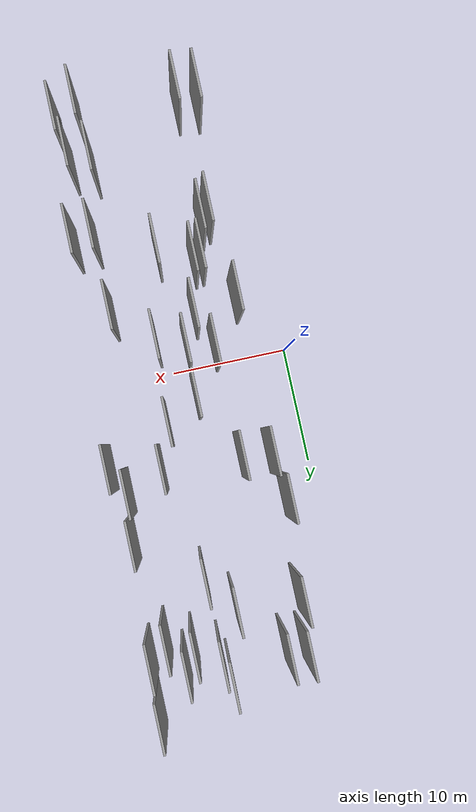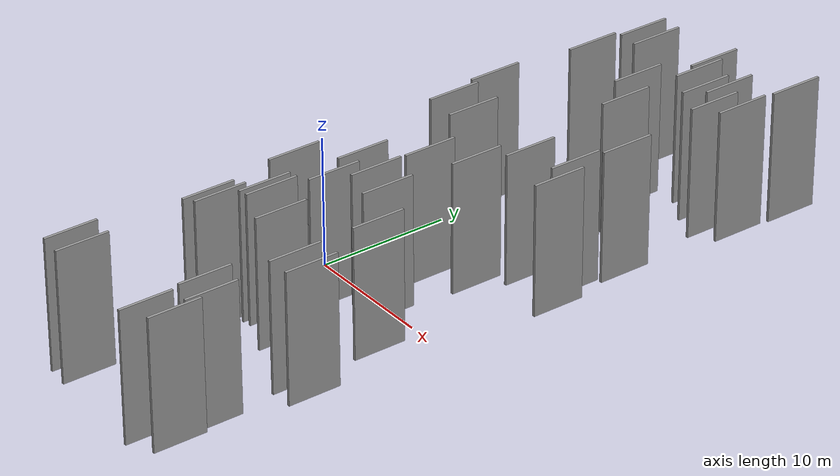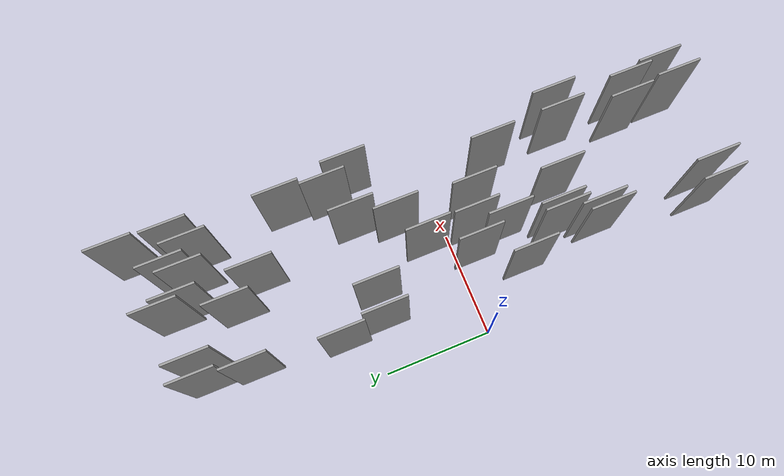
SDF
<sdf version="1.6">
 <world name="default">
  <scene>
   <sky><clouds><speed>12</speed></clouds></sky>
   <ambient>0.4 0.4 0.4 1</ambient>
   <background>0.7 0.7 0.7 1</background>
   <shadows>1</shadows>
  </scene>
  <gravity>0 0 -9.8066</gravity>
  <magnetic_field>6e-06 2.3e-05 -4.2e-05</magnetic_field>
  <physics default="0" name="default_physics" type="ode">
   <ode>
    <solver>
     <type>quick</type>
     <iters>10</iters>
     <sor>1.0</sor>
     <use_dynamic_moi_rescaling>0</use_dynamic_moi_rescaling>
    </solver>
    <constraints>
     <cfm>0</cfm>
     <erp>0.2</erp>
     <contact_max_correcting_vel>100</contact_max_correcting_vel>
     <contact_surface_layer>0.001</contact_surface_layer>
    </constraints>
   </ode>
   <max_step_size>0.004</max_step_size>
   <real_time_factor>1</real_time_factor>
   <real_time_update_rate>250</real_time_update_rate>
  </physics>
  <light name="sun" type="directional">
   <pose>0 0 10 0 0 0</pose>
   <diffuse>0.8 0.8 0.8 1</diffuse>
   <specular>0.2 0.2 0.2 1</specular>
   <attenuation>
    <range>1000</range>
    <constant>0.9</constant>
    <linear>0.01</linear>
    <quadratic>0.001</quadratic>
   </attenuation>
   <direction>-0.5 0.1 -0.9</direction>
  </light>
  <model name="grey_wall_1">
   <static>1</static>
   <pose>5.0184 -22.1735 2.5 0.000000 0.000000 1.570796</pose>
   <link name="link">
    <pose>0 0 5.00 0 0 0</pose>
    <collision name="collision"><geometry><box><size>4.00 0.2 10.00</size></box></geometry></collision>
    <visual name="visual">
     <cast_shadows>0</cast_shadows>
     <geometry><box><size>4.00 0.2 10.00</size></box></geometry>
     <material>
      <script>
       <uri>model://grey_wall/materials/scripts</uri>
       <uri>model://grey_wall/materials/textures</uri>
       <name>vrc/grey_wall</name>
      </script>
     </material>
    </visual>
   </link>
  </model>
  <model name="grey_wall_2">
   <static>1</static>
   <pose>16.1555 13.1335 2.5 0.000000 0.000000 1.570796</pose>
   <link name="link">
    <pose>0 0 5.00 0 0 0</pose>
    <collision name="collision"><geometry><box><size>4.00 0.2 10.00</size></box></geometry></collision>
    <visual name="visual">
     <cast_shadows>0</cast_shadows>
     <geometry><box><size>4.00 0.2 10.00</size></box></geometry>
     <material>
      <script>
       <uri>model://grey_wall/materials/scripts</uri>
       <uri>model://grey_wall/materials/textures</uri>
       <name>vrc/grey_wall</name>
      </script>
     </material>
    </visual>
   </link>
  </model>
  <model name="grey_wall_3">
   <static>1</static>
   <pose>3.3256 -21.9479 2.5 0.000000 0.000000 1.570796</pose>
   <link name="link">
    <pose>0 0 5.00 0 0 0</pose>
    <collision name="collision"><geometry><box><size>4.00 0.2 10.00</size></box></geometry></collision>
    <visual name="visual">
     <cast_shadows>0</cast_shadows>
     <geometry><box><size>4.00 0.2 10.00</size></box></geometry>
     <material>
      <script>
       <uri>model://grey_wall/materials/scripts</uri>
       <uri>model://grey_wall/materials/textures</uri>
       <name>vrc/grey_wall</name>
      </script>
     </material>
    </visual>
   </link>
  </model>
  <model name="grey_wall_4">
   <static>1</static>
   <pose>4.5028 -12.2182 2.5 0.000000 0.000000 1.570796</pose>
   <link name="link">
    <pose>0 0 5.00 0 0 0</pose>
    <collision name="collision"><geometry><box><size>4.00 0.2 10.00</size></box></geometry></collision>
    <visual name="visual">
     <cast_shadows>0</cast_shadows>
     <geometry><box><size>4.00 0.2 10.00</size></box></geometry>
     <material>
      <script>
       <uri>model://grey_wall/materials/scripts</uri>
       <uri>model://grey_wall/materials/textures</uri>
       <name>vrc/grey_wall</name>
      </script>
     </material>
    </visual>
   </link>
  </model>
  <model name="grey_wall_5">
   <static>1</static>
   <pose>15.0789 -21.8537 2.5 0.000000 0.000000 1.570796</pose>
   <link name="link">
    <pose>0 0 5.00 0 0 0</pose>
    <collision name="collision"><geometry><box><size>4.00 0.2 10.00</size></box></geometry></collision>
    <visual name="visual">
     <cast_shadows>0</cast_shadows>
     <geometry><box><size>4.00 0.2 10.00</size></box></geometry>
     <material>
      <script>
       <uri>model://grey_wall/materials/scripts</uri>
       <uri>model://grey_wall/materials/textures</uri>
       <name>vrc/grey_wall</name>
      </script>
     </material>
    </visual>
   </link>
  </model>
  <model name="grey_wall_6">
   <static>1</static>
   <pose>11.0372 23.6294 2.5 0.000000 0.000000 1.570796</pose>
   <link name="link">
    <pose>0 0 5.00 0 0 0</pose>
    <collision name="collision"><geometry><box><size>4.00 0.2 10.00</size></box></geometry></collision>
    <visual name="visual">
     <cast_shadows>0</cast_shadows>
     <geometry><box><size>4.00 0.2 10.00</size></box></geometry>
     <material>
      <script>
       <uri>model://grey_wall/materials/scripts</uri>
       <uri>model://grey_wall/materials/textures</uri>
       <name>vrc/grey_wall</name>
      </script>
     </material>
    </visual>
   </link>
  </model>
  <model name="grey_wall_7">
   <static>1</static>
   <pose>16.6972 22.6465 2.5 0.000000 0.000000 1.570796</pose>
   <link name="link">
    <pose>0 0 5.00 0 0 0</pose>
    <collision name="collision"><geometry><box><size>4.00 0.2 10.00</size></box></geometry></collision>
    <visual name="visual">
     <cast_shadows>0</cast_shadows>
     <geometry><box><size>4.00 0.2 10.00</size></box></geometry>
     <material>
      <script>
       <uri>model://grey_wall/materials/scripts</uri>
       <uri>model://grey_wall/materials/textures</uri>
       <name>vrc/grey_wall</name>
      </script>
     </material>
    </visual>
   </link>
  </model>
  <model name="grey_wall_8">
   <static>1</static>
   <pose>3.7094 -4.9024 2.5 0.000000 0.000000 1.570796</pose>
   <link name="link">
    <pose>0 0 5.00 0 0 0</pose>
    <collision name="collision"><geometry><box><size>4.00 0.2 10.00</size></box></geometry></collision>
    <visual name="visual">
     <cast_shadows>0</cast_shadows>
     <geometry><box><size>4.00 0.2 10.00</size></box></geometry>
     <material>
      <script>
       <uri>model://grey_wall/materials/scripts</uri>
       <uri>model://grey_wall/materials/textures</uri>
       <name>vrc/grey_wall</name>
      </script>
     </material>
    </visual>
   </link>
  </model>
  <model name="grey_wall_9">
   <static>1</static>
   <pose>7.3631 -4.2993 2.5 0.000000 0.000000 1.570796</pose>
   <link name="link">
    <pose>0 0 5.00 0 0 0</pose>
    <collision name="collision"><geometry><box><size>4.00 0.2 10.00</size></box></geometry></collision>
    <visual name="visual">
     <cast_shadows>0</cast_shadows>
     <geometry><box><size>4.00 0.2 10.00</size></box></geometry>
     <material>
      <script>
       <uri>model://grey_wall/materials/scripts</uri>
       <uri>model://grey_wall/materials/textures</uri>
       <name>vrc/grey_wall</name>
      </script>
     </material>
    </visual>
   </link>
  </model>
  <model name="grey_wall_10">
   <static>1</static>
   <pose>15.8072 -12.0592 2.5 0.000000 0.000000 1.570796</pose>
   <link name="link">
    <pose>0 0 5.00 0 0 0</pose>
    <collision name="collision"><geometry><box><size>4.00 0.2 10.00</size></box></geometry></collision>
    <visual name="visual">
     <cast_shadows>0</cast_shadows>
     <geometry><box><size>4.00 0.2 10.00</size></box></geometry>
     <material>
      <script>
       <uri>model://grey_wall/materials/scripts</uri>
       <uri>model://grey_wall/materials/textures</uri>
       <name>vrc/grey_wall</name>
      </script>
     </material>
    </visual>
   </link>
  </model>
  <model name="grey_wall_11">
   <static>1</static>
   <pose>11.0493 17.1665 2.5 0.000000 0.000000 1.570796</pose>
   <link name="link">
    <pose>0 0 5.00 0 0 0</pose>
    <collision name="collision"><geometry><box><size>4.00 0.2 10.00</size></box></geometry></collision>
    <visual name="visual">
     <cast_shadows>0</cast_shadows>
     <geometry><box><size>4.00 0.2 10.00</size></box></geometry>
     <material>
      <script>
       <uri>model://grey_wall/materials/scripts</uri>
       <uri>model://grey_wall/materials/textures</uri>
       <name>vrc/grey_wall</name>
      </script>
     </material>
    </visual>
   </link>
  </model>
  <model name="grey_wall_12">
   <static>1</static>
   <pose>13.0608 22.4641 2.5 0.000000 0.000000 1.570796</pose>
   <link name="link">
    <pose>0 0 5.00 0 0 0</pose>
    <collision name="collision"><geometry><box><size>4.00 0.2 10.00</size></box></geometry></collision>
    <visual name="visual">
     <cast_shadows>0</cast_shadows>
     <geometry><box><size>4.00 0.2 10.00</size></box></geometry>
     <material>
      <script>
       <uri>model://grey_wall/materials/scripts</uri>
       <uri>model://grey_wall/materials/textures</uri>
       <name>vrc/grey_wall</name>
      </script>
     </material>
    </visual>
   </link>
  </model>
  <model name="grey_wall_13">
   <static>1</static>
   <pose>3.7755 20.1655 2.5 0.000000 0.000000 1.570796</pose>
   <link name="link">
    <pose>0 0 5.00 0 0 0</pose>
    <collision name="collision"><geometry><box><size>4.00 0.2 10.00</size></box></geometry></collision>
    <visual name="visual">
     <cast_shadows>0</cast_shadows>
     <geometry><box><size>4.00 0.2 10.00</size></box></geometry>
     <material>
      <script>
       <uri>model://grey_wall/materials/scripts</uri>
       <uri>model://grey_wall/materials/textures</uri>
       <name>vrc/grey_wall</name>
      </script>
     </material>
    </visual>
   </link>
  </model>
  <model name="grey_wall_14">
   <static>1</static>
   <pose>3.1086 12.2018 2.5 0.000000 0.000000 1.570796</pose>
   <link name="link">
    <pose>0 0 5.00 0 0 0</pose>
    <collision name="collision"><geometry><box><size>4.00 0.2 10.00</size></box></geometry></collision>
    <visual name="visual">
     <cast_shadows>0</cast_shadows>
     <geometry><box><size>4.00 0.2 10.00</size></box></geometry>
     <material>
      <script>
       <uri>model://grey_wall/materials/scripts</uri>
       <uri>model://grey_wall/materials/textures</uri>
       <name>vrc/grey_wall</name>
      </script>
     </material>
    </visual>
   </link>
  </model>
  <model name="grey_wall_15">
   <static>1</static>
   <pose>12.9526 -18.1699 2.5 0.000000 0.000000 1.570796</pose>
   <link name="link">
    <pose>0 0 5.00 0 0 0</pose>
    <collision name="collision"><geometry><box><size>4.00 0.2 10.00</size></box></geometry></collision>
    <visual name="visual">
     <cast_shadows>0</cast_shadows>
     <geometry><box><size>4.00 0.2 10.00</size></box></geometry>
     <material>
      <script>
       <uri>model://grey_wall/materials/scripts</uri>
       <uri>model://grey_wall/materials/textures</uri>
       <name>vrc/grey_wall</name>
      </script>
     </material>
    </visual>
   </link>
  </model>
  <model name="grey_wall_16">
   <static>1</static>
   <pose>12.6048 7.8343 2.5 0.000000 0.000000 1.570796</pose>
   <link name="link">
    <pose>0 0 5.00 0 0 0</pose>
    <collision name="collision"><geometry><box><size>4.00 0.2 10.00</size></box></geometry></collision>
    <visual name="visual">
     <cast_shadows>0</cast_shadows>
     <geometry><box><size>4.00 0.2 10.00</size></box></geometry>
     <material>
      <script>
       <uri>model://grey_wall/materials/scripts</uri>
       <uri>model://grey_wall/materials/textures</uri>
       <name>vrc/grey_wall</name>
      </script>
     </material>
    </visual>
   </link>
  </model>
  <model name="grey_wall_17">
   <static>1</static>
   <pose>5.2063 -11.7776 2.5 0.000000 0.000000 1.570796</pose>
   <link name="link">
    <pose>0 0 5.00 0 0 0</pose>
    <collision name="collision"><geometry><box><size>4.00 0.2 10.00</size></box></geometry></collision>
    <visual name="visual">
     <cast_shadows>0</cast_shadows>
     <geometry><box><size>4.00 0.2 10.00</size></box></geometry>
     <material>
      <script>
       <uri>model://grey_wall/materials/scripts</uri>
       <uri>model://grey_wall/materials/textures</uri>
       <name>vrc/grey_wall</name>
      </script>
     </material>
    </visual>
   </link>
  </model>
  <model name="grey_wall_18">
   <static>1</static>
   <pose>5.7793 24.1815 2.5 0.000000 0.000000 1.570796</pose>
   <link name="link">
    <pose>0 0 5.00 0 0 0</pose>
    <collision name="collision"><geometry><box><size>4.00 0.2 10.00</size></box></geometry></collision>
    <visual name="visual">
     <cast_shadows>0</cast_shadows>
     <geometry><box><size>4.00 0.2 10.00</size></box></geometry>
     <material>
      <script>
       <uri>model://grey_wall/materials/scripts</uri>
       <uri>model://grey_wall/materials/textures</uri>
       <name>vrc/grey_wall</name>
      </script>
     </material>
    </visual>
   </link>
  </model>
  <model name="grey_wall_19">
   <static>1</static>
   <pose>10.5703 25.3436 2.5 0.000000 0.000000 1.570796</pose>
   <link name="link">
    <pose>0 0 5.00 0 0 0</pose>
    <collision name="collision"><geometry><box><size>4.00 0.2 10.00</size></box></geometry></collision>
    <visual name="visual">
     <cast_shadows>0</cast_shadows>
     <geometry><box><size>4.00 0.2 10.00</size></box></geometry>
     <material>
      <script>
       <uri>model://grey_wall/materials/scripts</uri>
       <uri>model://grey_wall/materials/textures</uri>
       <name>vrc/grey_wall</name>
      </script>
     </material>
    </visual>
   </link>
  </model>
  <model name="grey_wall_20">
   <static>1</static>
   <pose>6.0445 8.1218 2.5 0.000000 0.000000 1.570796</pose>
   <link name="link">
    <pose>0 0 5.00 0 0 0</pose>
    <collision name="collision"><geometry><box><size>4.00 0.2 10.00</size></box></geometry></collision>
    <visual name="visual">
     <cast_shadows>0</cast_shadows>
     <geometry><box><size>4.00 0.2 10.00</size></box></geometry>
     <material>
      <script>
       <uri>model://grey_wall/materials/scripts</uri>
       <uri>model://grey_wall/materials/textures</uri>
       <name>vrc/grey_wall</name>
      </script>
     </material>
    </visual>
   </link>
  </model>
  <model name="grey_wall_21">
   <static>1</static>
   <pose>14.0071 -5.5855 2.5 0.000000 0.000000 1.570796</pose>
   <link name="link">
    <pose>0 0 5.00 0 0 0</pose>
    <collision name="collision"><geometry><box><size>4.00 0.2 10.00</size></box></geometry></collision>
    <visual name="visual">
     <cast_shadows>0</cast_shadows>
     <geometry><box><size>4.00 0.2 10.00</size></box></geometry>
     <material>
      <script>
       <uri>model://grey_wall/materials/scripts</uri>
       <uri>model://grey_wall/materials/textures</uri>
       <name>vrc/grey_wall</name>
      </script>
     </material>
    </visual>
   </link>
  </model>
  <model name="grey_wall_22">
   <static>1</static>
   <pose>14.7151 -18.8692 2.5 0.000000 0.000000 1.570796</pose>
   <link name="link">
    <pose>0 0 5.00 0 0 0</pose>
    <collision name="collision"><geometry><box><size>4.00 0.2 10.00</size></box></geometry></collision>
    <visual name="visual">
     <cast_shadows>0</cast_shadows>
     <geometry><box><size>4.00 0.2 10.00</size></box></geometry>
     <material>
      <script>
       <uri>model://grey_wall/materials/scripts</uri>
       <uri>model://grey_wall/materials/textures</uri>
       <name>vrc/grey_wall</name>
      </script>
     </material>
    </visual>
   </link>
  </model>
  <model name="grey_wall_23">
   <static>1</static>
   <pose>5.8464 -8.7371 2.5 0.000000 0.000000 1.570796</pose>
   <link name="link">
    <pose>0 0 5.00 0 0 0</pose>
    <collision name="collision"><geometry><box><size>4.00 0.2 10.00</size></box></geometry></collision>
    <visual name="visual">
     <cast_shadows>0</cast_shadows>
     <geometry><box><size>4.00 0.2 10.00</size></box></geometry>
     <material>
      <script>
       <uri>model://grey_wall/materials/scripts</uri>
       <uri>model://grey_wall/materials/textures</uri>
       <name>vrc/grey_wall</name>
      </script>
     </material>
    </visual>
   </link>
  </model>
  <model name="grey_wall_24">
   <static>1</static>
   <pose>6.4878 -8.6407 2.5 0.000000 0.000000 1.570796</pose>
   <link name="link">
    <pose>0 0 5.00 0 0 0</pose>
    <collision name="collision"><geometry><box><size>4.00 0.2 10.00</size></box></geometry></collision>
    <visual name="visual">
     <cast_shadows>0</cast_shadows>
     <geometry><box><size>4.00 0.2 10.00</size></box></geometry>
     <material>
      <script>
       <uri>model://grey_wall/materials/scripts</uri>
       <uri>model://grey_wall/materials/textures</uri>
       <name>vrc/grey_wall</name>
      </script>
     </material>
    </visual>
   </link>
  </model>
  <model name="grey_wall_25">
   <static>1</static>
   <pose>16.8093 6.9412 2.5 0.000000 0.000000 1.570796</pose>
   <link name="link">
    <pose>0 0 5.00 0 0 0</pose>
    <collision name="collision"><geometry><box><size>4.00 0.2 10.00</size></box></geometry></collision>
    <visual name="visual">
     <cast_shadows>0</cast_shadows>
     <geometry><box><size>4.00 0.2 10.00</size></box></geometry>
     <material>
      <script>
       <uri>model://grey_wall/materials/scripts</uri>
       <uri>model://grey_wall/materials/textures</uri>
       <name>vrc/grey_wall</name>
      </script>
     </material>
    </visual>
   </link>
  </model>
  <model name="grey_wall_26">
   <static>1</static>
   <pose>11.3477 4.3283 2.5 0.000000 0.000000 1.570796</pose>
   <link name="link">
    <pose>0 0 5.00 0 0 0</pose>
    <collision name="collision"><geometry><box><size>4.00 0.2 10.00</size></box></geometry></collision>
    <visual name="visual">
     <cast_shadows>0</cast_shadows>
     <geometry><box><size>4.00 0.2 10.00</size></box></geometry>
     <material>
      <script>
       <uri>model://grey_wall/materials/scripts</uri>
       <uri>model://grey_wall/materials/textures</uri>
       <name>vrc/grey_wall</name>
      </script>
     </material>
    </visual>
   </link>
  </model>
  <model name="grey_wall_27">
   <static>1</static>
   <pose>8.6425 2.5450 2.5 0.000000 0.000000 1.570796</pose>
   <link name="link">
    <pose>0 0 5.00 0 0 0</pose>
    <collision name="collision"><geometry><box><size>4.00 0.2 10.00</size></box></geometry></collision>
    <visual name="visual">
     <cast_shadows>0</cast_shadows>
     <geometry><box><size>4.00 0.2 10.00</size></box></geometry>
     <material>
      <script>
       <uri>model://grey_wall/materials/scripts</uri>
       <uri>model://grey_wall/materials/textures</uri>
       <name>vrc/grey_wall</name>
      </script>
     </material>
    </visual>
   </link>
  </model>
  <model name="grey_wall_28">
   <static>1</static>
   <pose>4.2374 24.2986 2.5 0.000000 0.000000 1.570796</pose>
   <link name="link">
    <pose>0 0 5.00 0 0 0</pose>
    <collision name="collision"><geometry><box><size>4.00 0.2 10.00</size></box></geometry></collision>
    <visual name="visual">
     <cast_shadows>0</cast_shadows>
     <geometry><box><size>4.00 0.2 10.00</size></box></geometry>
     <material>
      <script>
       <uri>model://grey_wall/materials/scripts</uri>
       <uri>model://grey_wall/materials/textures</uri>
       <name>vrc/grey_wall</name>
      </script>
     </material>
    </visual>
   </link>
  </model>
  <model name="grey_wall_29">
   <static>1</static>
   <pose>3.6104 8.3270 2.5 0.000000 0.000000 1.570796</pose>
   <link name="link">
    <pose>0 0 5.00 0 0 0</pose>
    <collision name="collision"><geometry><box><size>4.00 0.2 10.00</size></box></geometry></collision>
    <visual name="visual">
     <cast_shadows>0</cast_shadows>
     <geometry><box><size>4.00 0.2 10.00</size></box></geometry>
     <material>
      <script>
       <uri>model://grey_wall/materials/scripts</uri>
       <uri>model://grey_wall/materials/textures</uri>
       <name>vrc/grey_wall</name>
      </script>
     </material>
    </visual>
   </link>
  </model>
  <model name="grey_wall_30">
   <static>1</static>
   <pose>13.2623 -22.7795 2.5 0.000000 0.000000 1.570796</pose>
   <link name="link">
    <pose>0 0 5.00 0 0 0</pose>
    <collision name="collision"><geometry><box><size>4.00 0.2 10.00</size></box></geometry></collision>
    <visual name="visual">
     <cast_shadows>0</cast_shadows>
     <geometry><box><size>4.00 0.2 10.00</size></box></geometry>
     <material>
      <script>
       <uri>model://grey_wall/materials/scripts</uri>
       <uri>model://grey_wall/materials/textures</uri>
       <name>vrc/grey_wall</name>
      </script>
     </material>
    </visual>
   </link>
  </model>
  <model name="grey_wall_31">
   <static>1</static>
   <pose>13.9977 23.7902 2.5 0.000000 0.000000 1.570796</pose>
   <link name="link">
    <pose>0 0 5.00 0 0 0</pose>
    <collision name="collision"><geometry><box><size>4.00 0.2 10.00</size></box></geometry></collision>
    <visual name="visual">
     <cast_shadows>0</cast_shadows>
     <geometry><box><size>4.00 0.2 10.00</size></box></geometry>
     <material>
      <script>
       <uri>model://grey_wall/materials/scripts</uri>
       <uri>model://grey_wall/materials/textures</uri>
       <name>vrc/grey_wall</name>
      </script>
     </material>
    </visual>
   </link>
  </model>
  <model name="grey_wall_32">
   <static>1</static>
   <pose>10.8995 -2.5622 2.5 0.000000 0.000000 1.570796</pose>
   <link name="link">
    <pose>0 0 5.00 0 0 0</pose>
    <collision name="collision"><geometry><box><size>4.00 0.2 10.00</size></box></geometry></collision>
    <visual name="visual">
     <cast_shadows>0</cast_shadows>
     <geometry><box><size>4.00 0.2 10.00</size></box></geometry>
     <material>
      <script>
       <uri>model://grey_wall/materials/scripts</uri>
       <uri>model://grey_wall/materials/textures</uri>
       <name>vrc/grey_wall</name>
      </script>
     </material>
    </visual>
   </link>
  </model>
  <model name="grey_wall_33">
   <static>1</static>
   <pose>14.1095 -12.1084 2.5 0.000000 0.000000 1.570796</pose>
   <link name="link">
    <pose>0 0 5.00 0 0 0</pose>
    <collision name="collision"><geometry><box><size>4.00 0.2 10.00</size></box></geometry></collision>
    <visual name="visual">
     <cast_shadows>0</cast_shadows>
     <geometry><box><size>4.00 0.2 10.00</size></box></geometry>
     <material>
      <script>
       <uri>model://grey_wall/materials/scripts</uri>
       <uri>model://grey_wall/materials/textures</uri>
       <name>vrc/grey_wall</name>
      </script>
     </material>
    </visual>
   </link>
  </model>
  <model name="grey_wall_34">
   <static>1</static>
   <pose>16.8894 27.2148 2.5 0.000000 0.000000 1.570796</pose>
   <link name="link">
    <pose>0 0 5.00 0 0 0</pose>
    <collision name="collision"><geometry><box><size>4.00 0.2 10.00</size></box></geometry></collision>
    <visual name="visual">
     <cast_shadows>0</cast_shadows>
     <geometry><box><size>4.00 0.2 10.00</size></box></geometry>
     <material>
      <script>
       <uri>model://grey_wall/materials/scripts</uri>
       <uri>model://grey_wall/materials/textures</uri>
       <name>vrc/grey_wall</name>
      </script>
     </material>
    </visual>
   </link>
  </model>
  <model name="grey_wall_35">
   <static>1</static>
   <pose>6.2977 -1.2036 2.5 0.000000 0.000000 1.570796</pose>
   <link name="link">
    <pose>0 0 5.00 0 0 0</pose>
    <collision name="collision"><geometry><box><size>4.00 0.2 10.00</size></box></geometry></collision>
    <visual name="visual">
     <cast_shadows>0</cast_shadows>
     <geometry><box><size>4.00 0.2 10.00</size></box></geometry>
     <material>
      <script>
       <uri>model://grey_wall/materials/scripts</uri>
       <uri>model://grey_wall/materials/textures</uri>
       <name>vrc/grey_wall</name>
      </script>
     </material>
    </visual>
   </link>
  </model>
  <model name="grey_wall_36">
   <static>1</static>
   <pose>15.7059 9.1697 2.5 0.000000 0.000000 1.570796</pose>
   <link name="link">
    <pose>0 0 5.00 0 0 0</pose>
    <collision name="collision"><geometry><box><size>4.00 0.2 10.00</size></box></geometry></collision>
    <visual name="visual">
     <cast_shadows>0</cast_shadows>
     <geometry><box><size>4.00 0.2 10.00</size></box></geometry>
     <material>
      <script>
       <uri>model://grey_wall/materials/scripts</uri>
       <uri>model://grey_wall/materials/textures</uri>
       <name>vrc/grey_wall</name>
      </script>
     </material>
    </visual>
   </link>
  </model>
  <model name="grey_wall_37">
   <static>1</static>
   <pose>9.1006 19.8234 2.5 0.000000 0.000000 1.570796</pose>
   <link name="link">
    <pose>0 0 5.00 0 0 0</pose>
    <collision name="collision"><geometry><box><size>4.00 0.2 10.00</size></box></geometry></collision>
    <visual name="visual">
     <cast_shadows>0</cast_shadows>
     <geometry><box><size>4.00 0.2 10.00</size></box></geometry>
     <material>
      <script>
       <uri>model://grey_wall/materials/scripts</uri>
       <uri>model://grey_wall/materials/textures</uri>
       <name>vrc/grey_wall</name>
      </script>
     </material>
    </visual>
   </link>
  </model>
  <model name="grey_wall_38">
   <static>1</static>
   <pose>8.5445 -1.7581 2.5 0.000000 0.000000 1.570796</pose>
   <link name="link">
    <pose>0 0 5.00 0 0 0</pose>
    <collision name="collision"><geometry><box><size>4.00 0.2 10.00</size></box></geometry></collision>
    <visual name="visual">
     <cast_shadows>0</cast_shadows>
     <geometry><box><size>4.00 0.2 10.00</size></box></geometry>
     <material>
      <script>
       <uri>model://grey_wall/materials/scripts</uri>
       <uri>model://grey_wall/materials/textures</uri>
       <name>vrc/grey_wall</name>
      </script>
     </material>
    </visual>
   </link>
  </model>
  <model name="grey_wall_39">
   <static>1</static>
   <pose>9.3000 -9.8569 2.5 0.000000 0.000000 1.570796</pose>
   <link name="link">
    <pose>0 0 5.00 0 0 0</pose>
    <collision name="collision"><geometry><box><size>4.00 0.2 10.00</size></box></geometry></collision>
    <visual name="visual">
     <cast_shadows>0</cast_shadows>
     <geometry><box><size>4.00 0.2 10.00</size></box></geometry>
     <material>
      <script>
       <uri>model://grey_wall/materials/scripts</uri>
       <uri>model://grey_wall/materials/textures</uri>
       <name>vrc/grey_wall</name>
      </script>
     </material>
    </visual>
   </link>
  </model>
  <model name="grey_wall_40">
   <static>1</static>
   <pose>15.1915 21.4645 2.5 0.000000 0.000000 1.570796</pose>
   <link name="link">
    <pose>0 0 5.00 0 0 0</pose>
    <collision name="collision"><geometry><box><size>4.00 0.2 10.00</size></box></geometry></collision>
    <visual name="visual">
     <cast_shadows>0</cast_shadows>
     <geometry><box><size>4.00 0.2 10.00</size></box></geometry>
     <material>
      <script>
       <uri>model://grey_wall/materials/scripts</uri>
       <uri>model://grey_wall/materials/textures</uri>
       <name>vrc/grey_wall</name>
      </script>
     </material>
    </visual>
   </link>
  </model>
 </world>
</sdf>
